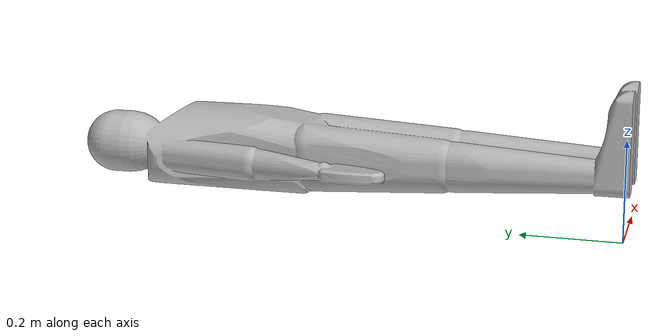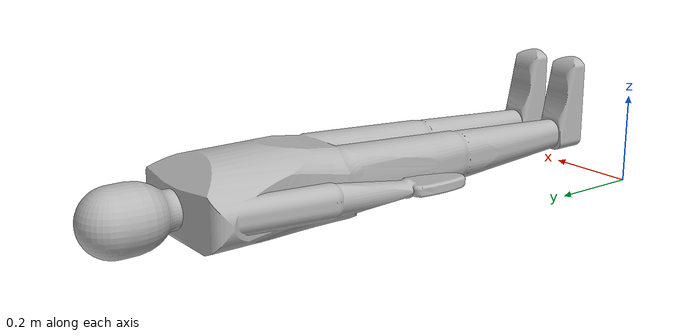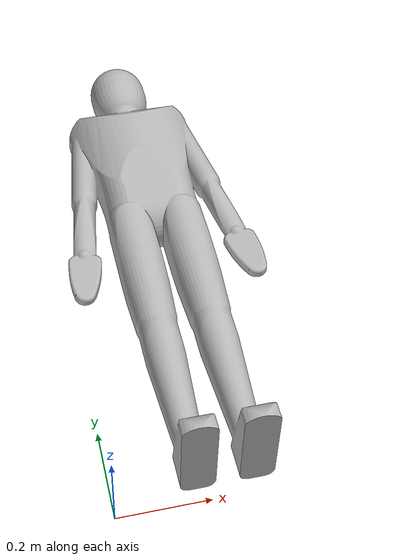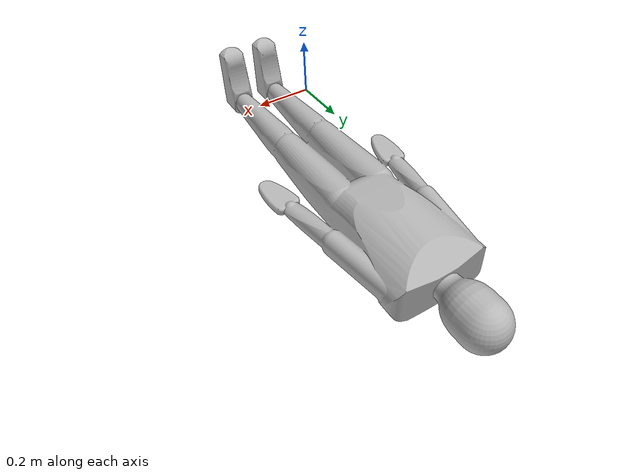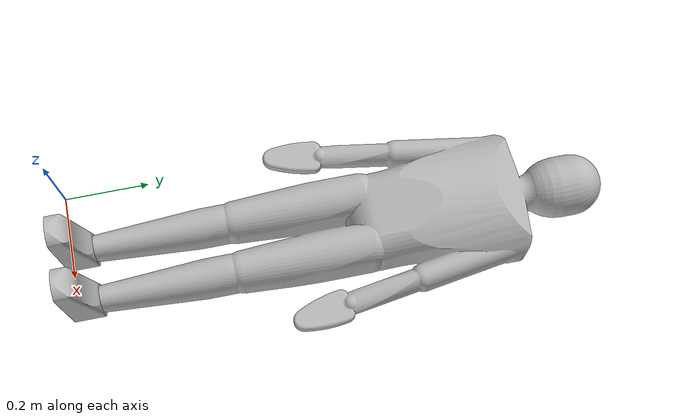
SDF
<?xml version="1.0" ?>
<sdf version="1.5">
  <model name="patient">
    <static>true</static>
    <link name="patient_body">
      <collision name="collision_patient">
        <geometry>
          <mesh>
            <uri>model://patient/meshes/manequim_1_55.stl</uri>
            <scale>0.0008 0.0008 0.0008</scale>
          </mesh>
        </geometry>
      </collision>
      <visual name="visual_patient">
        <geometry>
          <mesh>
            <uri>model://patient/meshes/manequim_1_55.stl</uri>
            <scale>0.0008 0.0008 0.0008</scale>
          </mesh>
        </geometry>
      </visual>
    </link>
  </model>
</sdf>
